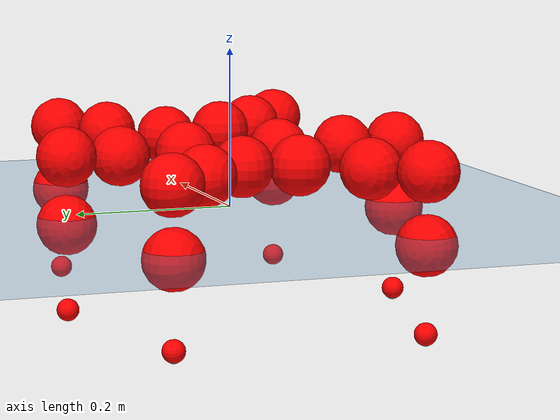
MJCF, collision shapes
<mujoco model="Golem">
  <compiler angle="radian" assetdir="assets" balanceinertia="true" inertiafromgeom="false"/>

  <option timestep="0.005" density="1.2" viscosity="2e-05"/>

  <size nkey="1"/>

  <visual>
    <quality shadowsize="8192"/>
    <map shadowclip="0.5"/>
  </visual>

  <default>
    <default class="/">
      <joint armature="0.01" damping="0.01" frictionloss="0.01"/>
      <geom contype="0" conaffinity="0" group="1" solref="-1000 -80"/>
      <site size="0.01 0.005 0.005" group="5"/>
      <general forcelimited="true" biastype="affine" gainprm="25" biasprm="0 -25 -0.5"/>
      <default class="visual">
        <geom type="mesh" group="2"/>
      </default>
      <default class="collision">
        <geom group="3"/>
      </default>
      <default class="foot">
        <geom size="0.01 0 0" condim="6" group="4" priority="1" solimp="0.015 1 0.01"/>
      </default>
      <default class="reward_collision_sphere">
        <geom group="5" rgba="1 0 0 1"/>
      </default>
    </default>
  </default>

  <asset>
    <texture type="skybox" colorspace="auto" name="//unnamed_texture_0" builtin="gradient" rgb1="0.95 0.95 0.95" rgb2="0.95 0.95 0.95" width="100" height="600"/>
    <texture type="2d" colorspace="auto" name="texplane" builtin="checker" rgb1="0.345 0.575 0.748" rgb2="0.345 0.575 0.748" markrgb="1 1 1" width="512" height="512"/>
    <material name="MatPlane" class="/" texture="texplane" texuniform="true" texrepeat="2 2" specular="0.9"/>
    <mesh name="body" class="/" file="body.stl" scale="0.001 0.001 0.001"/>
    <mesh name="coxa" class="/" file="coxa.stl" scale="0.001 0.001 0.001"/>
    <mesh name="femur" class="/" file="femur.stl" scale="0.001 0.001 0.001"/>
    <mesh name="tibia" class="/" file="tibia.stl" scale="0.001 0.001 0.001"/>
    <mesh name="tarsus" class="/" file="tarsus.stl" scale="0.001 0.001 0.001"/>
  </asset>

  <worldbody>
    <geom name="floor" class="/" size="100 100 0.125" type="plane" group="0" material="MatPlane"/>
    <light name="toplight_shadow" class="/" pos="0 0 5" dir="0.0990148 0.0990148 -0.990148" type="directional" ambient="0.04 0.04 0.04" diffuse="0.55 0.55 0.55" specular="0.12 0.12 0.12"/>
    <light name="toplight_fill" class="/" pos="0 0 5" dir="0.0990148 0.0990148 -0.990148" type="directional" castshadow="false" ambient="0.04 0.04 0.04" diffuse="0.3 0.3 0.3" specular="0.08 0.08 0.08"/>
    <body name="trunk" pos="0.0010454 -0.000968712 0.000421919" quat="1 0.000125888 -0.000118857 -0.000107117">
      <inertial pos="0.00318402 -0.00059243 -0.00200018" quat="0.999952 0.000173844 0.00467831 -0.00856429" mass="3.17951" diaginertia="0.0103642 0.00154504 0.0199003"/>
      <joint name="//unnamed_joint_0" type="free"/>
      <geom name="//unnamed_geom_1" class="/" pos="0 0 0.0725968" quat="1 0 0 0" type="mesh" rgba="0.9 0.9 0.9 1" mesh="body"/>
      <site name="imu" class="/" pos="0.125699 -0.00532161 0.100592" size="0.00938843"/>
      <camera name="track" class="/" pos="0 -1.37321 0" quat="0.707107 0.707107 0 0" mode="trackcom"/>
      <camera name="ego_camera" class="/" pos="0.129428 0 0.113432" quat="-0.5 -0.5 0.5 0.5"/>
      <body name="coxa_RR" pos="-0.176233 -0.0561105 0.0716188" quat="0.382824 0.000130861 -2.67633e-05 -0.923821">
        <inertial pos="0.000138515 -0.00197051 0.000384186" quat="0.999997 0.00219774 -0.000441308 3.09544e-05" mass="0.163128" diaginertia="0.00948627 0.00145267 0.0185466"/>
        <joint name="coxa_joint_RR" class="/" pos="0 0 0" axis="-0.00608056 0.00285246 -0.999977" range="-3.18878 3.13322" armature="0.00908077" damping="0" frictionloss="0.0094776"/>
        <geom name="//unnamed_geom_2" class="/" type="mesh" rgba="0.2 0.2 0.2 1" mesh="coxa"/>
        <geom name="//unnamed_geom_3" class="reward_collision_sphere" size="0.0375537" pos="-0.0298681 0 0"/>
        <body name="femur_RR" pos="0.0621343 0.00110423 0.00172889" quat="0.499804 -0.499887 0.499476 0.500832">
          <inertial pos="-0.000454586 0.000483478 -0.00216507" quat="0.999999 0.000261617 0.00156949 4.45119e-06" mass="0.161535" diaginertia="0.00974195 0.0014818 0.0185573"/>
          <joint name="femur_joint_RR" class="/" pos="0 0 0" axis="-0.0138453 -0.00410558 -0.999896" stiffness="0.00263768" range="-3.14227 3.1463" armature="0.00935287" damping="0.00317429" frictionloss="0.0100208"/>
          <geom name="//unnamed_geom_4" class="/" type="mesh" rgba="0.9 0.9 0.9 1" mesh="femur"/>
          <geom name="//unnamed_geom_5" class="reward_collision_sphere" size="0.0375537"/>
          <body name="tibia_RR" pos="-0.00168517 -0.0742553 -0.00147609" quat="-9.15799e-06 1 -6.95826e-05 -7.78426e-05">
            <inertial pos="0.000592908 -0.0023281 -0.000431552" quat="0.99993 5.41534e-05 -0.00838142 -0.00837873" mass="0.165209" diaginertia="0.0100976 0.00151275 0.0185845"/>
            <joint name="tibia_joint_RR" class="/" pos="0 0 0" axis="-0.0118555 0.00861361 0.999893" stiffness="0.000307499" range="-3.08851 3.14666" armature="0.00928062" damping="0.0162383" frictionloss="0.00901072"/>
            <geom name="//unnamed_geom_6" class="/" type="mesh" rgba="0.2 0.2 0.2 1" mesh="tibia"/>
            <geom name="//unnamed_geom_7" class="reward_collision_sphere" size="0.0375537"/>
            <body name="tarsus_RR" pos="0.0891149 -0.0021804 -0.00238661" quat="0.999999 -0.000211993 -0.000687683 0.000715038">
              <inertial pos="0.0593898 -0.000234119 -0.00262199" quat="0.503626 0.500998 0.488782 0.506413" mass="0.17099" diaginertia="0.00990327 0.00156024 0.018159"/>
              <joint name="tarsus_joint_RR" class="/" pos="0 0 0" axis="0.00142009 0.000409741 0.999999" range="-3.19007 3.15805" armature="0.00934825" damping="0" frictionloss="0.0107004"/>
              <geom name="//unnamed_geom_8" class="/" type="mesh" rgba="0.9 0.9 0.9 1" mesh="tarsus"/>
              <geom name="foot_1" class="foot" size="0.0100397" pos="0.111507 0 0" quat="0 -0.707107 0 0.707107"/>
              <geom name="//unnamed_geom_10" class="reward_collision_sphere" size="0.0375537"/>
              <geom name="//unnamed_geom_11" class="reward_collision_sphere" size="0.0140826" pos="0.107027 0 0"/>
              <site name="foot_1" class="foot" pos="0.111507 0 0" quat="0 -0.707107 0 0.707107" size="0.00938843"/>
            </body>
          </body>
        </body>
      </body>
      <body name="coxa_RM" pos="-0.000180865 -0.0938288 0.0708831" quat="0.707215 0.000567878 0.00064307 -0.706998">
        <inertial pos="0.00284272 0.000605839 -0.00243085" quat="1 -0.000247851 -0.000140552 0.00049643" mass="0.166128" diaginertia="0.00971555 0.00158233 0.0189399"/>
        <joint name="coxa_joint_RM" class="/" pos="0 0 0" axis="0.00222764 -0.00470568 -0.999986" range="-3.15192 3.13233" armature="0.0107273" damping="0.0119921" frictionloss="0.00971679"/>
        <geom name="//unnamed_geom_12" class="/" type="mesh" rgba="0.2 0.2 0.2 1" mesh="coxa"/>
        <geom name="//unnamed_geom_13" class="reward_collision_sphere" size="0.0375537" pos="-0.0298681 0 0"/>
        <body name="femur_RM" pos="0.0565022 -0.00309678 0.00150996" quat="0.499476 -0.500402 0.499941 0.500181">
          <inertial pos="0.00239772 -0.00253247 0.000511236" quat="0.999997 -0.00156927 0.00159747 0.000629064" mass="0.160161" diaginertia="0.00914047 0.00147213 0.0176016"/>
          <joint name="femur_joint_RM" class="/" pos="0 0 0" axis="-0.0108798 0.00709013 -0.999916" stiffness="0.00446273" range="-3.13919 3.08659" armature="0.00926557" damping="0.0259961" frictionloss="0.00845838"/>
          <geom name="//unnamed_geom_14" class="/" type="mesh" rgba="0.9 0.9 0.9 1" mesh="femur"/>
          <geom name="//unnamed_geom_15" class="reward_collision_sphere" size="0.0375537"/>
          <body name="tibia_RM" pos="-0.00156973 -0.0718496 -0.0012323" quat="-0.000340738 0.999999 0.0011173 -0.000128175">
            <inertial pos="-0.00239162 0.00209175 -0.000765926" quat="0.999936 0.00475215 0.00190649 -0.0100987" mass="0.159323" diaginertia="0.00950581 0.00149178 0.0183325"/>
            <joint name="tibia_joint_RM" class="/" pos="0 0 0" axis="-0.00192193 -0.00449348 0.999988" range="-3.13918 3.18759" armature="0.00934273" damping="0.0192564" frictionloss="0.0092436"/>
            <geom name="//unnamed_geom_16" class="/" type="mesh" rgba="0.2 0.2 0.2 1" mesh="tibia"/>
            <geom name="//unnamed_geom_17" class="reward_collision_sphere" size="0.0375537"/>
            <body name="tarsus_RM" pos="0.0854699 -0.000341674 0.000764698" quat="1 3.94231e-05 1.27732e-05 2.66571e-05">
              <inertial pos="0.0625305 0.000923909 0.000353089" quat="0.499956 0.499952 0.500003 0.500088" mass="0.169596" diaginertia="0.00977216 0.00151243 0.0192233"/>
              <joint name="tarsus_joint_RM" class="/" pos="0 0 0" axis="-0.00164711 -0.000636987 0.999998" range="-3.19499 3.08245" armature="0.00939595" damping="0.00502716" frictionloss="0.00808562"/>
              <geom name="//unnamed_geom_18" class="/" type="mesh" rgba="0.9 0.9 0.9 1" mesh="tarsus"/>
              <geom name="foot_2" class="foot" size="0.0103297" pos="0.111507 0 0" quat="0 -0.707107 0 0.707107"/>
              <geom name="//unnamed_geom_20" class="reward_collision_sphere" size="0.0375537"/>
              <geom name="//unnamed_geom_21" class="reward_collision_sphere" size="0.0140826" pos="0.107027 0 0"/>
              <site name="foot_2" class="foot" pos="0.111507 0 0" quat="0 -0.707107 0 0.707107" size="0.00938843"/>
            </body>
          </body>
        </body>
      </body>
      <body name="coxa_RF" pos="0.176946 -0.0602769 0.0758553" quat="0.923692 0.000288651 4.95447e-05 -0.383136">
        <inertial pos="0.000725258 -0.00261508 0.00292293" quat="0.999914 0.00831662 0.00635162 0.00791462" mass="0.154385" diaginertia="0.00935688 0.00147616 0.0181219"/>
        <joint name="coxa_joint_RF" class="/" pos="0 0 0" axis="-0.00395689 0.0100778 -0.999941" range="-3.08919 3.17505" armature="0.00803046" damping="0" frictionloss="0.00923207"/>
        <geom name="//unnamed_geom_22" class="/" type="mesh" rgba="0.2 0.2 0.2 1" mesh="coxa"/>
        <geom name="//unnamed_geom_23" class="reward_collision_sphere" size="0.0375537" pos="-0.0298681 0 0"/>
        <body name="femur_RF" pos="0.059041 -0.00190795 -0.00142224" quat="0.499915 -0.500142 0.5 0.499943">
          <inertial pos="-0.00267851 0.00249157 -0.000126748" quat="1 -0.000141161 2.02842e-05 -0.00010779" mass="0.164669" diaginertia="0.00987125 0.00158094 0.0192765"/>
          <joint name="femur_joint_RF" class="/" pos="0 0 0" axis="0.00256451 -0.00341809 -0.999991" stiffness="0.000970495" range="-3.12579 3.10522" armature="0.00930024" damping="0.00233896" frictionloss="0.00862131"/>
          <geom name="//unnamed_geom_24" class="/" type="mesh" rgba="0.9 0.9 0.9 1" mesh="femur"/>
          <geom name="//unnamed_geom_25" class="reward_collision_sphere" size="0.0375537"/>
          <body name="tibia_RF" pos="-0.000310227 -0.0761938 0.000990392" quat="7.30067e-05 1 7.63329e-05 4.45963e-06">
            <inertial pos="6.49083e-05 0.000186465 -0.00223466" quat="0.999904 0.00654127 0.0110227 -0.00524218" mass="0.1636" diaginertia="0.00982454 0.00147388 0.0194197"/>
            <joint name="tibia_joint_RF" class="/" pos="0 0 0" axis="0.00097621 -2.96992e-05 1" range="-3.14359 3.17782" armature="0.00961306" damping="0.00278196" frictionloss="0.0103721"/>
            <geom name="//unnamed_geom_26" class="/" type="mesh" rgba="0.2 0.2 0.2 1" mesh="tibia"/>
            <geom name="//unnamed_geom_27" class="reward_collision_sphere" size="0.0375537"/>
            <body name="tarsus_RF" pos="0.0868272 -0.000561164 0.000537927" quat="0.999999 -0.00103242 -0.000855751 0.000269598">
              <inertial pos="0.058504 -0.000709353 -0.000161194" quat="0.500746 0.499997 0.499054 0.500201" mass="0.169664" diaginertia="0.0100555 0.00151669 0.0187606"/>
              <joint name="tarsus_joint_RF" class="/" pos="0 0 0" axis="0.00347794 -0.0105982 0.999938" stiffness="0.0231467" range="-3.08489 3.13613" armature="0.00888437" damping="0" frictionloss="0.0089428"/>
              <geom name="//unnamed_geom_28" class="/" type="mesh" rgba="0.9 0.9 0.9 1" mesh="tarsus"/>
              <geom name="foot_3" class="foot" size="0.00921844" pos="0.111507 0 0" quat="0 -0.707107 0 0.707107"/>
              <geom name="//unnamed_geom_30" class="reward_collision_sphere" size="0.0375537"/>
              <geom name="//unnamed_geom_31" class="reward_collision_sphere" size="0.0140826" pos="0.107027 0 0"/>
              <site name="foot_3" class="foot" pos="0.111507 0 0" quat="0 -0.707107 0 0.707107" size="0.00938843"/>
            </body>
          </body>
        </body>
      </body>
      <body name="coxa_LR" pos="-0.174072 0.0587418 0.0730548" quat="0.38272 1.55587e-05 5.56288e-05 0.923865">
        <inertial pos="-0.00250653 -0.00309452 0.00149114" quat="0.999905 0.00462967 0.0119874 -0.00505329" mass="0.157883" diaginertia="0.0096943 0.00142432 0.017663"/>
        <joint name="coxa_joint_LR" class="/" pos="0 0 0" axis="-0.000204709 -0.000482735 -1" stiffness="0.0072901" range="-3.1808 3.16886" armature="0.00994148" damping="0.0113121" frictionloss="0.00922276"/>
        <geom name="//unnamed_geom_32" class="/" type="mesh" rgba="0.2 0.2 0.2 1" mesh="coxa"/>
        <geom name="//unnamed_geom_33" class="reward_collision_sphere" size="0.0375537" pos="-0.0298681 0 0"/>
        <body name="femur_LR" pos="0.0609777 -0.00436078 0.000847798" quat="0.5 -0.5 0.5 0.5">
          <inertial pos="-0.000964484 -0.00193295 -0.00117495" quat="1 2.29876e-05 -0.000218641 0.000225066" mass="0.164593" diaginertia="0.00949078 0.00157677 0.0182651"/>
          <joint name="femur_joint_LR" class="/" pos="0 0 0" axis="-7.73488e-05 -4.16091e-05 1" range="-3.08627 3.14575" armature="0.00985005" damping="0.00602079" frictionloss="0.00945557"/>
          <geom name="//unnamed_geom_34" class="/" type="mesh" rgba="0.9 0.9 0.9 1" mesh="femur"/>
          <geom name="//unnamed_geom_35" class="reward_collision_sphere" size="0.0375537"/>
          <body name="tibia_LR" pos="-8.33402e-05 -0.0780163 -0.00260843" quat="-0.000997106 0.999999 -2.0694e-05 -0.000312169">
            <inertial pos="0.00211715 -0.00275342 -0.00132924" quat="0.999904 -0.00487059 -0.0121344 0.00454425" mass="0.161937" diaginertia="0.00936116 0.00147055 0.0185968"/>
            <joint name="tibia_joint_LR" class="/" pos="0 0 0" axis="0.00316084 -0.00510227 -0.999982" range="-3.09935 3.19231" armature="0.00949144" damping="0" frictionloss="0.00941563"/>
            <geom name="//unnamed_geom_36" class="/" type="mesh" rgba="0.2 0.2 0.2 1" mesh="tibia"/>
            <geom name="//unnamed_geom_37" class="reward_collision_sphere" size="0.0375537"/>
            <body name="tarsus_LR" pos="0.0858866 0.000759955 -0.00167242" quat="0.999999 0.00045686 -0.0011036 0.000556344">
              <inertial pos="0.0606834 -0.00216601 -0.00252786" quat="0.503966 0.499959 0.499497 0.49655" mass="0.16669" diaginertia="0.00997025 0.00149789 0.0182403"/>
              <joint name="tarsus_joint_LR" class="/" pos="0 0 0" axis="-0.010287 0.010202 -0.999895" range="-3.1645 3.09309" armature="0.00817631" damping="0" frictionloss="0.00832878"/>
              <geom name="//unnamed_geom_38" class="/" type="mesh" rgba="0.9 0.9 0.9 1" mesh="tarsus"/>
              <geom name="foot_4" class="foot" size="0.0101399" pos="0.111507 0 0" quat="0.707107 0 -0.707107 0"/>
              <geom name="//unnamed_geom_40" class="reward_collision_sphere" size="0.0375537"/>
              <geom name="//unnamed_geom_41" class="reward_collision_sphere" size="0.0140826" pos="0.107027 0 0"/>
              <site name="foot_4" class="foot" pos="0.111507 0 0" quat="0.707107 0 -0.707107 0" size="0.00938843"/>
            </body>
          </body>
        </body>
      </body>
      <body name="coxa_LM" pos="-0.00281009 0.0904639 0.0722072" quat="0.7071 -2.95209e-05 4.86428e-06 0.707113">
        <inertial pos="0.000119525 -0.00270947 0.0011946" quat="0.999905 0.00413088 0.0131447 -0.000539691" mass="0.164204" diaginertia="0.0100805 0.00156759 0.019247"/>
        <joint name="coxa_joint_LM" class="/" pos="0 0 0" axis="0.00992056 -0.00111509 -0.99995" range="-3.13423 3.12735" armature="0.00947143" damping="0.0151449" frictionloss="0.0104807"/>
        <geom name="//unnamed_geom_42" class="/" type="mesh" rgba="0.2 0.2 0.2 1" mesh="coxa"/>
        <geom name="//unnamed_geom_43" class="reward_collision_sphere" size="0.0375537" pos="-0.0298681 0 0"/>
        <body name="femur_LM" pos="0.0548206 -0.000707287 -0.00181031" quat="0.499896 -0.500077 0.500007 0.50002">
          <inertial pos="0.00261705 0.000747212 0.000208444" quat="0.999905 -0.012575 -0.00289874 0.00485521" mass="0.173874" diaginertia="0.00978289 0.00162619 0.019398"/>
          <joint name="femur_joint_LM" class="/" pos="0 0 0" axis="0.00161576 0.00301641 0.999994" range="-3.14121 3.12357" armature="0.0100212" damping="0.0118238" frictionloss="0.00816019"/>
          <geom name="//unnamed_geom_44" class="/" type="mesh" rgba="0.9 0.9 0.9 1" mesh="femur"/>
          <geom name="//unnamed_geom_45" class="reward_collision_sphere" size="0.0375537"/>
          <body name="tibia_LM" pos="-0.00217622 -0.0684241 -0.00065651" quat="-0.000616402 0.999999 0.00110426 -0.00024249">
            <inertial pos="0.00238985 -6.52503e-05 -0.00279927" quat="0.999909 -0.00200049 0.0115845 -0.00663456" mass="0.168438" diaginertia="0.00991936 0.00158973 0.0190795"/>
            <joint name="tibia_joint_LM" class="/" pos="0 0 0" axis="0.0100522 0.00611973 -0.999931" range="-3.14372 3.14115" armature="0.00929695" damping="0.00284442" frictionloss="0.0080727"/>
            <geom name="//unnamed_geom_46" class="/" type="mesh" rgba="0.2 0.2 0.2 1" mesh="tibia"/>
            <geom name="//unnamed_geom_47" class="reward_collision_sphere" size="0.0375537"/>
            <body name="tarsus_LM" pos="0.0847709 0.000818781 -0.000714185" quat="0.999999 0.000199227 0.00109537 -0.000513837">
              <inertial pos="0.0596786 0.000737106 0.00205728" quat="0.501887 0.488669 0.50613 0.503134" mass="0.173217" diaginertia="0.0101544 0.00152756 0.0189862"/>
              <joint name="tarsus_joint_LM" class="/" pos="0 0 0" axis="0.00768326 -0.00626433 -0.999951" stiffness="0.00864761" range="-3.15629 3.15194" armature="0.00962589" damping="0" frictionloss="0.0106612"/>
              <geom name="//unnamed_geom_48" class="/" type="mesh" rgba="0.9 0.9 0.9 1" mesh="tarsus"/>
              <geom name="foot_5" class="foot" size="0.00959824" pos="0.111507 0 0" quat="0.707107 0 -0.707107 0"/>
              <geom name="//unnamed_geom_50" class="reward_collision_sphere" size="0.0375537"/>
              <geom name="//unnamed_geom_51" class="reward_collision_sphere" size="0.0140826" pos="0.107027 0 0"/>
              <site name="foot_5" class="foot" pos="0.111507 0 0" quat="0.707107 0 -0.707107 0" size="0.00938843"/>
            </body>
          </body>
        </body>
      </body>
      <body name="coxa_LF" pos="0.17954 0.0562108 0.0718494" quat="0.923994 0.000119149 0.000157195 0.382406">
        <inertial pos="0.000750564 -0.000246107 0.00289416" quat="0.999906 -0.0124734 0.00460363 0.00329676" mass="0.160715" diaginertia="0.00946524 0.0015783 0.0182113"/>
        <joint name="coxa_joint_LF" class="/" pos="0 0 0" axis="0.00379026 0.016426 -0.999858" range="-3.11838 3.1447" armature="0.0079875" damping="0.000828283" frictionloss="0.0103175"/>
        <geom name="//unnamed_geom_52" class="/" type="mesh" rgba="0.2 0.2 0.2 1" mesh="coxa"/>
        <geom name="//unnamed_geom_53" class="reward_collision_sphere" size="0.0375537" pos="-0.0298681 0 0"/>
        <body name="femur_LF" pos="0.0580703 -0.000277189 0.00125685" quat="0.50016 -0.499812 0.499865 0.500163">
          <inertial pos="-0.00217116 -0.00109357 0.00191008" quat="0.999994 0.00126957 -0.00290395 0.00106753" mass="0.161989" diaginertia="0.0100906 0.00150375 0.0187976"/>
          <joint name="femur_joint_LF" class="/" pos="0 0 0" axis="6.26836e-05 -0.000171259 1" range="-3.14031 3.14577" armature="0.0104761" damping="0.00883397" frictionloss="0.0091502"/>
          <geom name="//unnamed_geom_54" class="/" type="mesh" rgba="0.9 0.9 0.9 1" mesh="femur"/>
          <geom name="//unnamed_geom_55" class="reward_collision_sphere" size="0.0375537"/>
          <body name="tibia_LF" pos="-0.000856749 -0.0740229 -0.00107604" quat="3.32228e-06 0.999999 0.000227926 0.00108966">
            <inertial pos="-0.00117452 -0.00185487 0.0014918" quat="1 -0.000267133 0.000327155 0.000327745" mass="0.163483" diaginertia="0.00927534 0.00149191 0.018428"/>
            <joint name="tibia_joint_LF" class="/" pos="0 0 0" axis="0.000638952 0.00190183 -0.999998" range="-3.14954 3.11811" armature="0.0107509" damping="0" frictionloss="0.00957305"/>
            <geom name="//unnamed_geom_56" class="/" type="mesh" rgba="0.2 0.2 0.2 1" mesh="tibia"/>
            <geom name="//unnamed_geom_57" class="reward_collision_sphere" size="0.0375537"/>
            <body name="tarsus_LF" pos="0.0849312 -0.000765598 0.00183363" quat="1 -0.000142165 -0.000428165 -2.16956e-06">
              <inertial pos="0.0591711 0.00267939 0.00101284" quat="0.504007 0.503724 0.489357 0.502761" mass="0.155521" diaginertia="0.00962371 0.00143336 0.0185697"/>
              <joint name="tarsus_joint_LF" class="/" pos="0 0 0" axis="-0.00657062 0.00349015 -0.999972" range="-3.15426 3.14575" armature="0.0108325" damping="0.00591077" frictionloss="0.00832437"/>
              <geom name="//unnamed_geom_58" class="/" type="mesh" rgba="0.9 0.9 0.9 1" mesh="tarsus"/>
              <geom name="foot_6" class="foot" size="0.00957987" pos="0.111507 0 0" quat="0.707107 0 -0.707107 0"/>
              <geom name="//unnamed_geom_60" class="reward_collision_sphere" size="0.0375537"/>
              <geom name="//unnamed_geom_61" class="reward_collision_sphere" size="0.0140826" pos="0.107027 0 0"/>
              <site name="foot_6" class="foot" pos="0.111507 0 0" quat="0.707107 0 -0.707107 0" size="0.00938843"/>
            </body>
          </body>
        </body>
      </body>
    </body>
  </worldbody>

  <contact>
    <pair class="/" geom1="floor" geom2="foot_1" name="//unnamed_contact_0"/>
    <pair class="/" geom1="floor" geom2="foot_2" name="//unnamed_contact_1"/>
    <pair class="/" geom1="floor" geom2="foot_3" name="//unnamed_contact_2"/>
    <pair class="/" geom1="floor" geom2="foot_4" name="//unnamed_contact_3"/>
    <pair class="/" geom1="floor" geom2="foot_5" name="//unnamed_contact_4"/>
    <pair class="/" geom1="floor" geom2="foot_6" name="//unnamed_contact_5"/>
  </contact>

  <actuator>
    <general name="coxa_joint_RR" class="/" joint="coxa_joint_RR" forcerange="-6.7043 6.7043" gainprm="24.1354" biasprm="0 -24.1354 -0.480855"/>
    <general name="femur_joint_RR" class="/" joint="femur_joint_RR" forcerange="-7.08102 7.08102" gainprm="24.1354" biasprm="0 -24.1354 -0.480855"/>
    <general name="tibia_joint_RR" class="/" joint="tibia_joint_RR" forcerange="-6.86576 6.86576" gainprm="24.1354" biasprm="0 -24.1354 -0.480855"/>
    <general name="tarsus_joint_RR" class="/" joint="tarsus_joint_RR" forcerange="-7.56163 7.56163" gainprm="24.1354" biasprm="0 -24.1354 -0.480855"/>
    <general name="coxa_joint_RM" class="/" joint="coxa_joint_RM" forcerange="-6.61232 6.61232" gainprm="24.1354" biasprm="0 -24.1354 -0.480855"/>
    <general name="femur_joint_RM" class="/" joint="femur_joint_RM" forcerange="-6.88325 6.88325" gainprm="24.1354" biasprm="0 -24.1354 -0.480855"/>
    <general name="tibia_joint_RM" class="/" joint="tibia_joint_RM" forcerange="-6.94158 6.94158" gainprm="24.1354" biasprm="0 -24.1354 -0.480855"/>
    <general name="tarsus_joint_RM" class="/" joint="tarsus_joint_RM" forcerange="-7.47232 7.47232" gainprm="24.1354" biasprm="0 -24.1354 -0.480855"/>
    <general name="coxa_joint_RF" class="/" joint="coxa_joint_RF" forcerange="-7.36105 7.36105" gainprm="24.1354" biasprm="0 -24.1354 -0.480855"/>
    <general name="femur_joint_RF" class="/" joint="femur_joint_RF" forcerange="-6.19698 6.19698" gainprm="24.1354" biasprm="0 -24.1354 -0.480855"/>
    <general name="tibia_joint_RF" class="/" joint="tibia_joint_RF" forcerange="-7.48894 7.48894" gainprm="24.1354" biasprm="0 -24.1354 -0.480855"/>
    <general name="tarsus_joint_RF" class="/" joint="tarsus_joint_RF" forcerange="-6.18076 6.18076" gainprm="24.1354" biasprm="0 -24.1354 -0.480855"/>
    <general name="coxa_joint_LR" class="/" joint="coxa_joint_LR" forcerange="-6.27538 6.27538" gainprm="24.1354" biasprm="0 -24.1354 -0.480855"/>
    <general name="femur_joint_LR" class="/" joint="femur_joint_LR" forcerange="-6.88401 6.88401" gainprm="24.1354" biasprm="0 -24.1354 -0.480855"/>
    <general name="tibia_joint_LR" class="/" joint="tibia_joint_LR" forcerange="-6.91037 6.91037" gainprm="24.1354" biasprm="0 -24.1354 -0.480855"/>
    <general name="tarsus_joint_LR" class="/" joint="tarsus_joint_LR" forcerange="-6.26942 6.26942" gainprm="24.1354" biasprm="0 -24.1354 -0.480855"/>
    <general name="coxa_joint_LM" class="/" joint="coxa_joint_LM" forcerange="-7.10682 7.10682" gainprm="24.1354" biasprm="0 -24.1354 -0.480855"/>
    <general name="femur_joint_LM" class="/" joint="femur_joint_LM" forcerange="-6.22155 6.22155" gainprm="24.1354" biasprm="0 -24.1354 -0.480855"/>
    <general name="tibia_joint_LM" class="/" joint="tibia_joint_LM" forcerange="-6.6409 6.6409" gainprm="24.1354" biasprm="0 -24.1354 -0.480855"/>
    <general name="tarsus_joint_LM" class="/" joint="tarsus_joint_LM" forcerange="-7.06899 7.06899" gainprm="24.1354" biasprm="0 -24.1354 -0.480855"/>
    <general name="coxa_joint_LF" class="/" joint="coxa_joint_LF" forcerange="-6.1424 6.1424" gainprm="24.1354" biasprm="0 -24.1354 -0.480855"/>
    <general name="femur_joint_LF" class="/" joint="femur_joint_LF" forcerange="-6.27122 6.27122" gainprm="24.1354" biasprm="0 -24.1354 -0.480855"/>
    <general name="tibia_joint_LF" class="/" joint="tibia_joint_LF" forcerange="-7.4282 7.4282" gainprm="24.1354" biasprm="0 -24.1354 -0.480855"/>
    <general name="tarsus_joint_LF" class="/" joint="tarsus_joint_LF" forcerange="-6.7039 6.7039" gainprm="24.1354" biasprm="0 -24.1354 -0.480855"/>
  </actuator>

  <sensor>
    <gyro site="imu" name="imu_angular_velocity"/>
    <velocimeter site="imu" name="imu_linear_velocity"/>
    <framelinvel objtype="site" objname="foot_1" name="foot_1_global_linear_velocity"/>
    <framelinvel objtype="site" objname="foot_2" name="foot_2_global_linear_velocity"/>
    <framelinvel objtype="site" objname="foot_3" name="foot_3_global_linear_velocity"/>
    <framelinvel objtype="site" objname="foot_4" name="foot_4_global_linear_velocity"/>
    <framelinvel objtype="site" objname="foot_5" name="foot_5_global_linear_velocity"/>
    <framelinvel objtype="site" objname="foot_6" name="foot_6_global_linear_velocity"/>
  </sensor>

  <keyframe>
    <key name="home" qpos="0 0 0.1457 1 0 0 0 0 0 0 0 0 0 0 0 0 0 0 0 0 0 0 0 0 0 0 0 0 0 0 0"/>
  </keyframe>
</mujoco>
